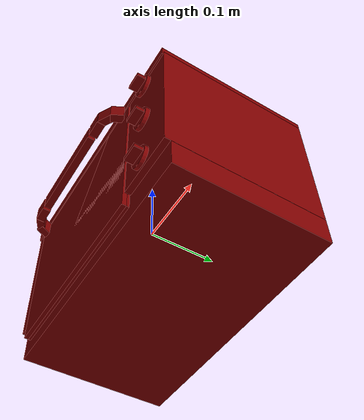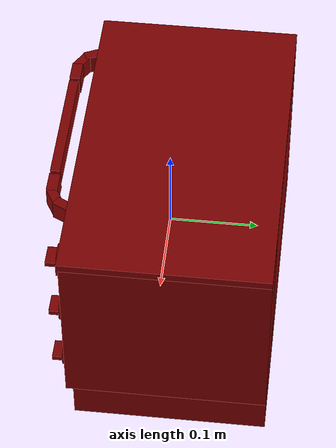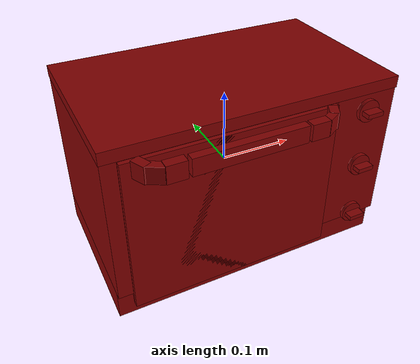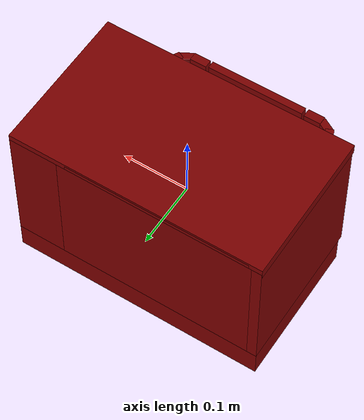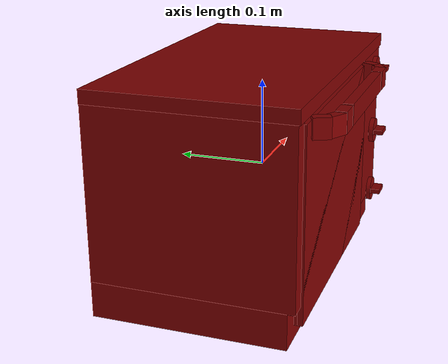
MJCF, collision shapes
<?xml version='1.0' encoding='UTF-8'?>
<mujoco model="model">
  <option timestep="0.002" gravity="0.0 0.0 -9.81"/>
  <compiler angle="radian"/>
  <asset>
    <mesh file="visuals/door.obj" name="door_vis"/>
    <mesh file="visuals/knob_function.obj" name="knob_function_vis"/>
    <mesh file="visuals/knob_temp.obj" name="knob_temp_vis"/>
    <mesh file="visuals/knob_time.obj" name="knob_time_vis"/>
    <mesh file="visuals/rack0.obj" name="rack0_vis"/>
    <mesh file="visuals/Body001.obj" name="Body001_vis"/>
    <mesh file="visuals/window.obj" name="window_vis"/>
    <texture file="visuals/T_BC001.png" name="Body001_material" type="2d"/>
    <material name="Body001_material" rgba="1 1 1 1.0" texture="Body001_material" shininess="0.141421377658844" specular="0.5"/>
    <texture file="visuals/T_BC001.png" name="door_material" type="2d"/>
    <material name="door_material" rgba="1 1 1 1.0" texture="door_material" shininess="0.141421377658844" specular="0.5"/>
    <material name="window_material" rgba="0.08872000128030777 0.08872000128030777 0.08872000128030777 0.8999999761581421" shininess="0.141421377658844" specular="0.3103448502657381"/>
    <texture file="visuals/T_BC001.png" name="knob_function_material" type="2d"/>
    <material name="knob_function_material" rgba="1 1 1 1.0" texture="knob_function_material" shininess="0.141421377658844" specular="0.3103448502657381"/>
    <texture file="visuals/T_BC001.png" name="knob_temp_material" type="2d"/>
    <material name="knob_temp_material" rgba="1 1 1 1.0" texture="knob_temp_material" shininess="0.141421377658844" specular="0.3103448502657381"/>
    <texture file="visuals/T_BC001.png" name="knob_time_material" type="2d"/>
    <material name="knob_time_material" rgba="1 1 1 1.0" texture="knob_time_material" shininess="0.141421377658844" specular="0.3103448502657381"/>
    <texture file="visuals/T_BC001.png" name="rack0_material" type="2d"/>
    <material name="rack0_material" rgba="1 1 1 1.0" texture="rack0_material" shininess="0.141421377658844" specular="5"/>
  </asset>
  <default>
    <default class="visual">
      <geom conaffinity="0" contype="0" group="1" type="mesh"/>
    </default>
    <default class="collision">
      <geom group="0" rgba="0.5 0 0 0.5"/>
    </default>
    <default class="spawn">
      <geom group="0" rgba="1 1 1 0.5" contype="0" conaffinity="0"/>
      <site group="0" rgba="1 1 1 0.5"/>
    </default>
    <default class="region">
      <geom group="1" conaffinity="0" contype="0" rgba="0 1 0 0"/>
    </default>
  </default>
  <worldbody>
    <body>
      <body name="object">
        <geom mesh="Body001_vis" type="mesh" solimp="0.998 0.998 0.001" solref="0.001 1" friction="0.95 0.3 0.1" class="visual" material="Body001_material"/>
        <geom class="collision" type="box" pos="-0.00001924 0.01417695 0.11725897" size="0.18997880816459656 0.1128525659441948 0.007724042981863022" quat="1.0 0.0 0.0 0.0"/>
        <geom class="collision" type="box" pos="0.00036514 0.01942216 -0.09918351" size="0.18959452211856842 0.10760743170976639 0.025200285017490387" quat="1.0 0.0 0.0 0.0"/>
        <geom class="collision" type="box" pos="-0.17692606 -0.00110270 0.03863464" size="0.009380834177136421 0.07778986543416977 0.008414654061198235" quat="1.0 0.0 0.0 0.0"/>
        <geom class="collision" type="box" pos="0.14659047 0.01526260 0.01590004" size="0.04340909793972969 0.11176708340644836 0.09982733428478241" quat="1.0 0.0 0.0 0.0"/>
        <geom class="collision" type="box" pos="-0.02879886 0.10630676 0.01590004" size="0.14574214816093445 0.020723553374409676 0.0998273715376854" quat="1.0 0.0 0.0 0.0"/>
        <geom class="collision" type="box" pos="-0.17692603 -0.00075438 -0.04788422" size="0.009380877017974854 0.0789041668176651 0.014934135600924492" quat="1.0 0.0 0.0 0.0"/>
        <geom class="collision" type="box" pos="-0.17692606 -0.06679572 0.06841086" size="0.0093808863312006 0.01209758035838604 0.021756593137979507" quat="1.0 0.0 0.0 0.0"/>
        <geom class="collision" type="box" pos="-0.17692603 -0.00075438 -0.00318185" size="0.009380885399878025 0.07890422642230988 0.014934143051505089" quat="1.0 0.0 0.0 0.0"/>
        <geom class="collision" type="box" pos="0.10906940 -0.00075438 -0.00318185" size="0.009380889125168324 0.07890426367521286 0.014934147708117962" quat="1.0 0.0 0.0 0.0"/>
        <geom class="collision" type="box" pos="0.10906937 -0.06679572 0.06841086" size="0.00938089843839407 0.01209759246557951 0.021756617352366447" quat="1.0 0.0 0.0 0.0"/>
        <geom class="collision" type="box" pos="0.10906940 -0.00075438 -0.04788422" size="0.009380897507071495 0.07890433073043823 0.014934155158698559" quat="1.0 0.0 0.0 0.0"/>
        <geom class="collision" type="box" pos="0.10906937 -0.00110270 0.03863464" size="0.009380906820297241 0.07779043912887573 0.00841468945145607" quat="1.0 0.0 0.0 0.0"/>
        <geom class="collision" type="box" pos="-0.17997979 0.01526260 0.01590004" size="0.009251176379621029 0.11176765710115433 0.09982790797948837" quat="1.0 0.0 0.0 0.0"/>
        <geom class="collision" type="box" pos="-0.03338976 0.01819034 0.11382058" size="0.13694804906845093 0.10883990675210953 0.007724089082330465" quat="1.0 0.0 0.0 0.0"/>
        <body name="door">
          <joint axis="1.0 0.0 0.0" pos="-0.03283887 -0.09847585 -0.10733636" limited="true" name="door_joint" range="0.0 1.4707963267948966" type="hinge" damping="1" frictionloss="1" armature=".01" stiffness="0.05"/>
          <geom mesh="door_vis" type="mesh" solimp="0.998 0.998 0.001" solref="0.001 1" friction="0.95 0.3 0.1" class="visual" material="door_material"/>
          <geom class="collision" type="box" pos="-0.03349322 -0.09403253 -0.00035042" size="0.13614767789840698 0.0047989413142204285 0.10531546920537949" quat="1.0 0.0 0.0 0.0"/>
          <geom class="collision" type="box" pos="-0.03349322 -0.09584256 -0.00035042" size="0.13614846765995026 0.0029889310244470835 0.10531587153673172" quat="1.0 0.0 0.0 0.0" name="door_main"/>
          <geom class="collision" type="box" pos="-0.03033750 -0.12205140 0.09796228" size="0.07170767337083817 0.005466809496283531 0.011160259135067463" quat="1.0 0.0 0.0 0.0" name="door_handle_main"/>
          <geom class="collision" type="box" pos="0.08786118 -0.10707899 0.09739874" size="0.010832059197127819 0.00932940375059843 0.005815025884658098" quat="0.16997507214546204 0.6863728761672974 -0.1699763536453247 0.6863736510276794"/>
          <geom class="collision" type="box" pos="-0.11829247 -0.12157422 0.09783316" size="0.012226363644003868 0.0061744870617985725 0.011229265481233597" quat="1.0 0.0 0.0 0.0"/>
          <geom class="collision" type="box" pos="-0.13731886 -0.11774691 0.09762655" size="0.010691005736589432 0.010186678729951382 0.005524971056729555" quat="0.6111931204795837 -0.3555891513824463 0.6111922860145569 0.3555886745452881"/>
          <geom class="collision" type="box" pos="-0.14895986 -0.10707902 0.09749217" size="0.010925479233264923 0.009329404681921005 0.005815025884658098" quat="0.6897950172424316 -0.15551117062568665 0.6897937655448914 0.15551088750362396"/>
          <geom class="collision" type="box" pos="0.05719380 -0.12157421 0.09765731" size="0.012226369231939316 0.006174493581056595 0.01076219230890274" quat="1.0 0.0 0.0 0.0"/>
          <geom class="collision" type="box" pos="0.07622018 -0.11774688 0.09759100" size="0.010617608204483986 0.010186676867306232 0.005524970591068268" quat="0.3555890917778015 0.6111931204795837 -0.3555886447429657 0.6111923456192017"/>
          <body name="window">
            <geom mesh="window_vis" type="mesh" solimp="0.998 0.998 0.001" solref="0.001 1" friction="0.95 0.3 0.1" class="visual" material="window_material"/>
            <geom class="collision" type="box" pos="-0.03386922 -0.09490749 0.00797443" size="0.130821093916893 0.0012698714854195714 0.08143587410449982" quat="1.0 0.0 0.0 0.0"/>
          </body>
        </body>
        <body name="knob_function">
          <joint axis="0.0 1.0 0.0" pos="0.14687461 -0.10712299 0.00771286" limited="true" name="knob_function_joint" range="0.0 3.141592653589793" type="hinge" damping="0.05" frictionloss="0.75" armature="1"/>
          <geom mesh="knob_function_vis" type="mesh" solimp="0.998 0.998 0.001" solref="0.001 1" friction="0.95 0.3 0.1" class="visual" material="knob_function_material"/>
          <geom class="collision" type="cylinder" pos="0.14687401 -0.10163704 0.00783999" size="0.015185631811618805 0.0029001834336668253" quat="0.7071068286895752 0.7071067690849304 0.0 0.0" friction="100 0.5 0.01"/>
          <geom class="collision" type="box" pos="0.14708826 -0.10988774 0.00779805" size="0.01133323647081852 0.006229211110621691 0.002965589752420783" quat="1.0 0.0 0.0 0.0" name="knob_function_main" friction="100 0.5 0.01"/>
        </body>
        <body name="knob_temp">
          <joint axis="0.0 1.0 0.0" pos="0.14687401 -0.10712299 0.08847898" limited="true" name="knob_temp_joint" range="0.0 4.71238898038469" type="hinge" damping="0.05" frictionloss="0.75" armature="1"/>
          <geom mesh="knob_temp_vis" type="mesh" solimp="0.998 0.998 0.001" solref="0.001 1" friction="0.95 0.3 0.1" class="visual" material="knob_temp_material"/>
          <geom class="collision" type="cylinder" pos="0.14687401 -0.10134456 0.08822217" size="0.015267528593540192 0.002573650097474456" quat="0.7071068286895752 0.7071067690849304 0.0 0.0" friction="100 0.5 0.01"/>
          <geom class="collision" type="box" pos="0.14708826 -0.10988774 0.08858038" size="0.01133323647081852 0.006229211110621691 0.002965589752420783" quat="1.0 0.0 0.0 0.0" name="knob_temp_main" friction="100 0.5 0.01"/>
        </body>
        <body name="knob_time">
          <joint axis="0.0 1.0 0.0" pos="0.14687449 -0.10712299 -0.07244463" limited="true" name="knob_time_joint" range="0.0 4.71238898038469" type="hinge" damping="0.05" frictionloss="0.75" armature="1"/>
          <geom mesh="knob_time_vis" type="mesh" solimp="0.998 0.998 0.001" solref="0.001 1" friction="0.95 0.3 0.1" class="visual" material="knob_time_material"/>
          <geom class="collision" type="cylinder" pos="0.14673863 -0.10171304 -0.07243087" size="0.01485092006623745 0.0025797439739108086" quat="0.7071068286895752 0.7071067690849304 0.0 0.0" friction="100 0.5 0.01"/>
          <geom class="collision" type="box" pos="0.14708826 -0.10988774 -0.07245003" size="0.01133323647081852 0.006229211110621691 0.002965589752420783" quat="1.0 0.0 0.0 0.0" name="knob_time_main" friction="100 0.5 0.01"/>
        </body>
        <body name="rack0">
          <geom class="region" name="reg_rack0" type="box" pos="-0.033536550000000005 -0.0018333449999999966 0.033552984999999994" size="0.10522981000000001 0.065276565 0.071720905"/>
          <joint axis="0.0 -1.0 0.0" pos="-0.03396043 -0.00196607 -0.03472731" limited="true" name="rack0_joint" range="0.0 0.15" type="slide" damping="1" frictionloss="1" armature=".01" stiffness="0.05"/>
          <geom mesh="rack0_vis" type="mesh" solimp="0.998 0.998 0.001" solref="0.001 1" friction="0.95 0.3 0.1" class="visual" material="rack0_material"/>
          <geom class="collision" type="box" pos="-0.03364737 -0.00181642 -0.03976474" size="0.10801810026168823 0.07175811380147934 0.0022034181747585535" quat="1.0 0.0 0.0 0.0"/>
          <geom class="collision" type="box" pos="0.09423527 -0.00181642 -0.02915482" size="0.0076108407229185104 0.07175811380147934 0.0022034181747585535" quat="1.0 0.0 0.0 0.0"/>
          <geom class="collision" type="box" pos="0.08006468 -0.00181642 -0.03453123" size="0.009506208822131157 0.07175811380147934 0.0022034181747585535" quat="0.9429240226745605 0.0 -0.3330079913139343 0.0"/>
          <geom class="collision" type="box" pos="-0.14844824 -0.00181642 -0.03453123" size="0.009506208822131157 0.07175811380147934 0.0022034181747585535" quat="0.9429239630699158 0.0 0.3330080509185791 0.0"/>
          <geom class="collision" type="box" pos="-0.16261883 -0.00181642 -0.02915482" size="0.0076108407229185104 0.07175811380147934 0.0022034181747585535" quat="1.0 0.0 0.0 0.0"/>
        </body>
        <geom class="region" name="reg_main" type="box" pos="0.0 0.014099500000000001 0.0" size="0.191 0.11393102000000001 0.126"/>
      </body>
    </body>
  </worldbody>
  <actuator>
    <motor name="door_joint_actuator" joint="door_joint" gear="50"/>
    <motor name="knob_function_joint_actuator" joint="knob_function_joint" gear="50"/>
    <motor name="knob_temp_joint_actuator" joint="knob_temp_joint" gear="50"/>
    <motor name="knob_time_joint_actuator" joint="knob_time_joint" gear="50"/>
    <motor name="rack0_joint_actuator" joint="rack0_joint" gear="50"/>
  </actuator>
</mujoco>
